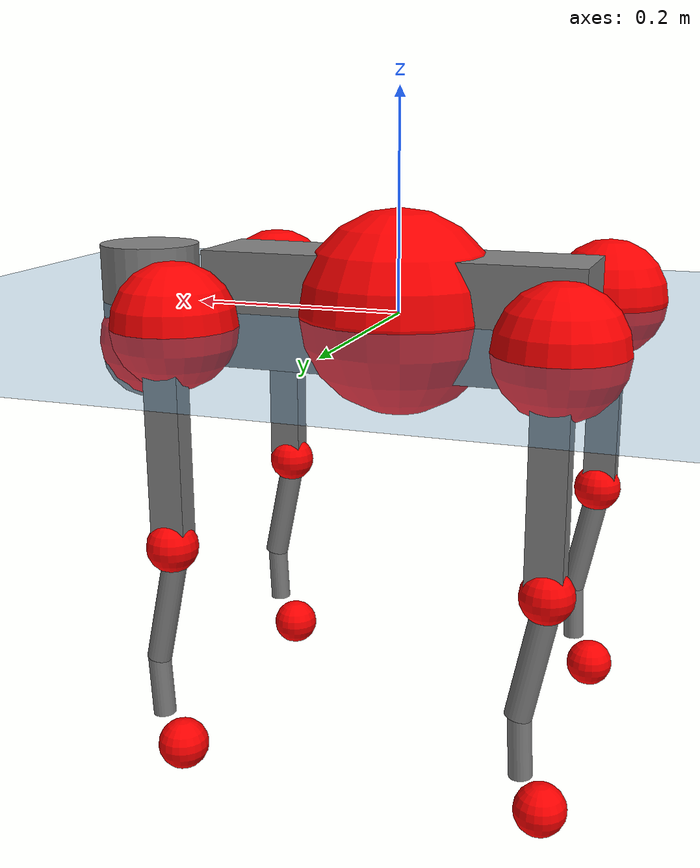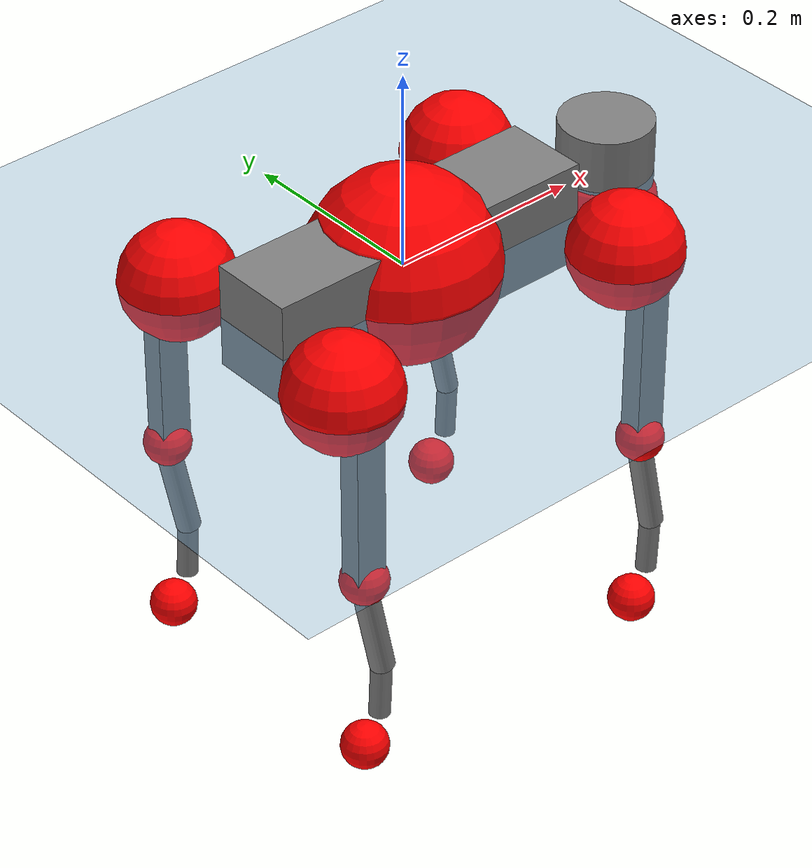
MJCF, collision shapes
<mujoco model="go2">
  <compiler angle="radian" assetdir="assets" balanceinertia="true" inertiafromgeom="false"/>

  <option timestep="0.005" density="1.2" viscosity="2e-05"/>

  <size nkey="1"/>

  <visual>
    <quality shadowsize="8192"/>
    <map shadowclip="0.5"/>
  </visual>

  <default>
    <default class="/">
      <geom contype="0" conaffinity="0" group="1" solref="-1000 -80"/>
      <site size="0.01 0.005 0.005" group="5"/>
      <general forcelimited="true" biastype="affine" gainprm="20" biasprm="0 -20 -0.5"/>
      <default class="go2">
        <joint armature="0.01" damping="0.01" frictionloss="0.2"/>
        <geom condim="1" margin="0.001"/>
        <default class="visual">
          <geom type="mesh" group="2"/>
        </default>
        <default class="collision">
          <geom group="3"/>
          <default class="foot">
            <geom size="0.022 0 0" condim="6" priority="1" friction="0.8 0.02 0.01" solimp="0.015 1 0.022"/>
          </default>
        </default>
        <default class="reward_collision_sphere">
          <geom group="5" rgba="1 0 0 1"/>
        </default>
      </default>
    </default>
  </default>

  <asset>
    <texture type="skybox" colorspace="auto" name="//unnamed_texture_0" builtin="gradient" rgb1="0.95 0.95 0.95" rgb2="0.95 0.95 0.95" width="100" height="600"/>
    <texture type="2d" colorspace="auto" name="texplane" builtin="checker" rgb1="0.345 0.575 0.748" rgb2="0.345 0.575 0.748" markrgb="1 1 1" width="512" height="512"/>
    <material name="MatPlane" class="/" texture="texplane" texuniform="true" texrepeat="2 2" specular="0.9"/>
    <material name="metal" class="/" rgba="0.9 0.95 0.95 1"/>
    <material name="black" class="/" rgba="0 0 0 1"/>
    <material name="white" class="/"/>
    <material name="gray" class="/" rgba="0.671705 0.692426 0.77427 1"/>
    <mesh name="base_0" class="/" file="base_0.obj"/>
    <mesh name="base_1" class="/" file="base_1.obj"/>
    <mesh name="base_2" class="/" file="base_2.obj"/>
    <mesh name="base_3" class="/" file="base_3.obj"/>
    <mesh name="base_4" class="/" file="base_4.obj"/>
    <mesh name="hip_0" class="/" file="hip_0.obj"/>
    <mesh name="hip_1" class="/" file="hip_1.obj"/>
    <mesh name="thigh_0" class="/" file="thigh_0.obj"/>
    <mesh name="thigh_1" class="/" file="thigh_1.obj"/>
    <mesh name="thigh_mirror_0" class="/" file="thigh_mirror_0.obj"/>
    <mesh name="thigh_mirror_1" class="/" file="thigh_mirror_1.obj"/>
    <mesh name="calf_0" class="/" file="calf_0.obj"/>
    <mesh name="calf_1" class="/" file="calf_1.obj"/>
    <mesh name="calf_mirror_0" class="/" file="calf_mirror_0.obj"/>
    <mesh name="calf_mirror_1" class="/" file="calf_mirror_1.obj"/>
    <mesh name="foot" class="/" file="foot.obj"/>
  </asset>

  <worldbody>
    <geom name="floor" class="/" size="100 100 0.125" type="plane" group="0" material="MatPlane"/>
    <light name="toplight_shadow" class="/" pos="0 0 5" dir="0.0990148 0.0990148 -0.990148" type="directional" ambient="0.04 0.04 0.04" diffuse="0.55 0.55 0.55" specular="0.12 0.12 0.12"/>
    <light name="toplight_fill" class="/" pos="0 0 5" dir="0.0990148 0.0990148 -0.990148" type="directional" castshadow="false" ambient="0.04 0.04 0.04" diffuse="0.3 0.3 0.3" specular="0.08 0.08 0.08"/>
    <body name="trunk" childclass="go2" pos="-0.000613141 5.08841e-05 0.00156693" quat="0.999999 0.000703614 -0.000880447 0.000123885">
      <inertial pos="0.0178267 -0.00250645 -0.00710925" quat="-0.000216369 0.712884 -0.00177331 0.701279" mass="5.79101" diaginertia="0.0589275 0.101134 0.0160849"/>
      <joint name="//unnamed_joint_0" type="free" armature="0" damping="0" frictionloss="0"/>
      <geom name="//unnamed_geom_1" class="visual" material="black" mesh="base_0"/>
      <geom name="//unnamed_geom_2" class="visual" material="black" mesh="base_1"/>
      <geom name="//unnamed_geom_3" class="visual" material="black" mesh="base_2"/>
      <geom name="//unnamed_geom_4" class="visual" material="white" mesh="base_3"/>
      <geom name="//unnamed_geom_5" class="visual" material="gray" mesh="base_4"/>
      <geom name="trunk_1" class="collision" size="0.176822 0.0439471 0.0535825" type="box"/>
      <geom name="trunk_2" class="collision" size="0.0470022 0.042302" pos="0.25333 0 0.00922352" type="cylinder"/>
      <geom name="trunk_3" class="collision" size="0.0441821" pos="0.260441 0 -0.0553411"/>
      <geom name="//unnamed_geom_9" class="reward_collision_sphere" size="0.0940044"/>
      <geom name="//unnamed_geom_10" class="reward_collision_sphere" size="0.0564026" pos="0.248886 0 -0.0415058"/>
      <site name="imu" pos="-0.0136443 -0.000909248 0.0298204" size="0.00940044"/>
      <camera name="track" pos="0 -2.0178 0" quat="0.707107 0.707107 0 0" mode="trackcom"/>
      <camera name="ego_camera" pos="0.27733 0 0.0415058" quat="-0.5 -0.5 0.5 0.5"/>
      <body name="FL_hip" pos="0.168611 0.0442325 -0.00274019" quat="1 -0.000198891 6.645e-05 0.00025623">
        <inertial pos="-0.00464476 -0.000588213 0.000720338" quat="0.498106 0.498868 0.504435 0.498566" mass="0.575678" diaginertia="0.000487563 0.000597118 0.000316528"/>
        <joint name="FL_hip_joint" pos="0 0 0" axis="0.999877 0.00935322 -0.0125749" range="-1.05122 1.08953" armature="0.00914035" damping="0.0205267" frictionloss="0.161429"/>
        <geom name="//unnamed_geom_11" class="visual" material="metal" mesh="hip_0"/>
        <geom name="//unnamed_geom_12" class="visual" material="gray" mesh="hip_1"/>
        <geom name="//unnamed_geom_13" class="collision" size="0.043242 0.0188009" pos="0 0.0807122 0" quat="0.707107 0.707107 0 0" type="cylinder"/>
        <geom name="//unnamed_geom_14" class="reward_collision_sphere" size="0.0564026" pos="0 0.0706232 0"/>
        <body name="FL_thigh" pos="-0.00341894 0.0973645 0.00282658" quat="1 0.000935399 0.000186602 0.000221359">
          <inertial pos="-0.00426736 -0.0224878 -0.0274593" quat="0.832365 0.0753309 -0.0285834 0.54834" mass="0.93532" diaginertia="0.00335811 0.00609628 0.000602616"/>
          <joint name="FL_thigh_joint" pos="0 0 0" axis="0.00334664 0.999976 0.00611857" stiffness="0.00834608" range="-1.5249 3.54763" armature="0.00910403" damping="0.0177741" frictionloss="0.162383"/>
          <geom name="//unnamed_geom_15" class="visual" material="metal" mesh="thigh_0"/>
          <geom name="//unnamed_geom_16" class="visual" material="gray" mesh="thigh_1"/>
          <geom name="//unnamed_geom_17" class="collision" size="0.100115 0.0115155 0.0159807" pos="0 0 -0.0982305" quat="0.707107 0 0.707107 0" type="box"/>
          <body name="FL_calf" pos="0.000143773 0.00161 -0.196823" quat="1 -8.92713e-06 9.16499e-06 -6.39114e-06">
            <inertial pos="0.00520324 -0.0004343 -0.132597" quat="0.710388 0.00124047 -0.00433363 0.703796" mass="0.202813" diaginertia="0.000805101 0.00151741 3.56503e-05"/>
            <joint name="FL_calf_joint" pos="0 0 0" axis="-0.0153637 0.999867 -0.00551066" range="-2.66638 -0.832107" armature="0.0100287" damping="0.000690843" frictionloss="0.19092"/>
            <geom name="//unnamed_geom_18" class="visual" material="gray" mesh="calf_0"/>
            <geom name="//unnamed_geom_19" class="visual" material="black" mesh="calf_1"/>
            <geom name="FL_calf0" class="collision" size="0.0112805 0.0564026" pos="0.00711102 0 -0.0553411" quat="0.994493 0 -0.104807 0" type="cylinder"/>
            <geom name="//unnamed_geom_21" class="collision" size="0.0103405 0.0305514" pos="0.0177776 0 -0.136508" quat="0.999688 0 0.0249974 0" type="cylinder"/>
            <geom name="//unnamed_geom_22" class="visual" pos="0 0 -0.196461" quat="1 0 0 0" material="black" mesh="foot"/>
            <geom name="FL_foot" class="foot" size="0.0157458" pos="-0.00177776 0 -0.196461"/>
            <geom name="//unnamed_geom_24" class="reward_collision_sphere" size="0.0235011"/>
            <geom name="//unnamed_geom_25" class="reward_collision_sphere" size="0.0235011" pos="-0.00177776 0 -0.196461"/>
            <site name="FL_foot" class="foot" pos="-0.00177776 0 -0.196461" size="0.00940044"/>
          </body>
        </body>
      </body>
      <body name="FR_hip" pos="0.170416 -0.044929 -0.00120818" quat="1 -4.81346e-06 -2.11186e-05 -7.78138e-06">
        <inertial pos="-0.00743301 -0.00241321 -0.00325773" quat="0.502098 0.50429 0.500911 0.492623" mass="0.56675" diaginertia="0.000471354 0.000633634 0.000307408"/>
        <joint name="FR_hip_joint" pos="0 0 0" axis="0.99992 0.0126499 -0.000905574" stiffness="0.00634749" range="-1.0586 1.03546" armature="0.00969" damping="0" frictionloss="0.204542"/>
        <geom name="//unnamed_geom_26" class="visual" pos="0 7.53993e-10 3.23403e-08" quat="4.63268e-05 1 0 0" material="metal" mesh="hip_0"/>
        <geom name="//unnamed_geom_27" class="visual" pos="0 1.22231e-09 -7.999e-08" quat="4.63268e-05 1 0 0" material="gray" mesh="hip_1"/>
        <geom name="//unnamed_geom_28" class="collision" size="0.043242 0.0188009" pos="0 -0.0807122 0" quat="0.707107 0.707107 0 0" type="cylinder"/>
        <geom name="//unnamed_geom_29" class="reward_collision_sphere" size="0.0564026" pos="0 -0.0706232 0"/>
        <body name="FR_thigh" pos="0.00289473 -0.0990579 -0.0015959" quat="0.999999 0.000599421 -0.000824966 -0.000421455">
          <inertial pos="-0.00177321 0.0214298 -0.0328399" quat="0.540737 -0.0245708 0.0876194 0.836255" mass="0.991806" diaginertia="0.00319438 0.00593393 0.00060153"/>
          <joint name="FR_thigh_joint" pos="0 0 0" axis="0.000642909 -0.999998 -0.00201893" range="-3.4607 1.569" armature="0.0081924" damping="0.0193472" frictionloss="0.208054"/>
          <geom name="//unnamed_geom_30" class="visual" material="metal" mesh="thigh_mirror_0"/>
          <geom name="//unnamed_geom_31" class="visual" material="gray" mesh="thigh_mirror_1"/>
          <geom name="//unnamed_geom_32" class="collision" size="0.100115 0.0115155 0.0159807" pos="0 0 -0.0982305" quat="0.707107 0 0.707107 0" type="box"/>
          <body name="FR_calf" pos="-0.00283702 -0.00146305 -0.197444" quat="0.999999 -0.000118414 -0.00103337 0.000930744">
            <inertial pos="0.00281011 0.00072381 -0.131041" quat="0.706984 -0.000200234 1.6149e-05 0.70723" mass="0.214339" diaginertia="0.000876381 0.00153513 3.68758e-05"/>
            <joint name="FR_calf_joint" pos="0 0 0" axis="0.00349521 -0.999959 0.0083442" range="0.803742 2.66478" armature="0.0107643" damping="0.0159752" frictionloss="0.20961"/>
            <geom name="//unnamed_geom_33" class="visual" material="gray" mesh="calf_mirror_0"/>
            <geom name="//unnamed_geom_34" class="visual" material="black" mesh="calf_mirror_1"/>
            <geom name="FR_calf0" class="collision" size="0.0122206 0.0564026" pos="0.00888878 0 -0.0553411" quat="0.995004 0 -0.0998334 0" type="cylinder"/>
            <geom name="//unnamed_geom_36" class="collision" size="0.0103405 0.0305514" pos="0.0177776 0 -0.136508" quat="0.999688 0 0.0249974 0" type="cylinder"/>
            <geom name="//unnamed_geom_37" class="visual" pos="0 0 -0.196461" quat="1 0 0 0" material="black" mesh="foot"/>
            <geom name="FR_foot" class="foot" size="0.020078" pos="-0.00177776 0 -0.196461"/>
            <geom name="//unnamed_geom_39" class="reward_collision_sphere" size="0.0235011"/>
            <geom name="//unnamed_geom_40" class="reward_collision_sphere" size="0.0235011" pos="-0.00177776 0 -0.196461"/>
            <site name="FR_foot" class="foot" pos="-0.00177776 0 -0.196461" size="0.00940044"/>
          </body>
        </body>
      </body>
      <body name="RL_hip" pos="-0.169611 0.0444654 -0.00211383" quat="1 0.000262913 -0.000213613 0.000152347">
        <inertial pos="0.00501899 0.00514379 -0.000125914" quat="0.501965 0.509499 0.494111 0.494262" mass="0.573306" diaginertia="0.0005043 0.000634556 0.00031611"/>
        <joint name="RL_hip_joint" pos="0 0 0" axis="-0.999998 -0.000198605 0.00187865" range="-1.05593 1.07289" armature="0.0100074" damping="0.00217854" frictionloss="0.186295"/>
        <geom name="//unnamed_geom_41" class="visual" pos="2.91613e-10 0 5.7163e-08" quat="4.63268e-05 0 1 0" material="metal" mesh="hip_0"/>
        <geom name="//unnamed_geom_42" class="visual" pos="4.7274e-10 0 5.06954e-08" quat="4.63268e-05 0 1 0" material="gray" mesh="hip_1"/>
        <geom name="//unnamed_geom_43" class="collision" size="0.043242 0.0188009" pos="0 0.0807122 0" quat="0.707107 0.707107 0 0" type="cylinder"/>
        <geom name="//unnamed_geom_44" class="reward_collision_sphere" size="0.0564026" pos="0 0.0706232 0"/>
        <body name="RL_thigh" pos="0.000272328 0.0942083 0.0016914" quat="1 0.000478279 0.000692715 -0.000362567">
          <inertial pos="-0.00404344 -0.0205855 -0.0316992" quat="0.829183 0.0834194 -0.0216433 0.552294" mass="0.899832" diaginertia="0.00314131 0.00609862 0.000578363"/>
          <joint name="RL_thigh_joint" pos="0 0 0" axis="-0.000173115 0.999999 0.00128285" stiffness="0.00823266" range="-0.572118 4.48157" armature="0.00934504" damping="0" frictionloss="0.190819"/>
          <geom name="//unnamed_geom_45" class="visual" material="metal" mesh="thigh_0"/>
          <geom name="//unnamed_geom_46" class="visual" material="gray" mesh="thigh_1"/>
          <geom name="//unnamed_geom_47" class="collision" size="0.100115 0.0115155 0.0159807" pos="0 0 -0.0982305" quat="0.707107 0 0.707107 0" type="box"/>
          <body name="RL_calf" pos="-0.00195705 0.00124059 -0.198366" quat="1 -7.19576e-06 -8.91531e-07 -1.65659e-05">
            <inertial pos="0.00802728 0.00158579 -0.13188" quat="0.711481 0.013142 0.0034389 0.702575" mass="0.203018" diaginertia="0.000804353 0.00158765 3.62983e-05"/>
            <joint name="RL_calf_joint" pos="0 0 0" axis="-0.000417539 0.999999 0.000991574" stiffness="0.0106796" range="-2.67588 -0.892087" armature="0.0102714" damping="0.0157326" frictionloss="0.164521"/>
            <geom name="//unnamed_geom_48" class="visual" material="gray" mesh="calf_0"/>
            <geom name="//unnamed_geom_49" class="visual" material="black" mesh="calf_1"/>
            <geom name="RL_calf0" class="collision" size="0.0122206 0.0564026" pos="0.00888878 0 -0.0553411" quat="0.995004 0 -0.0998334 0" type="cylinder"/>
            <geom name="//unnamed_geom_51" class="collision" size="0.0103405 0.0305514" pos="0.0177776 0 -0.136508" quat="0.999688 0 0.0249974 0" type="cylinder"/>
            <geom name="//unnamed_geom_52" class="visual" pos="0 0 -0.196461" quat="1 0 0 0" material="black" mesh="foot"/>
            <geom name="RL_foot" class="foot" size="0.0190081" pos="-0.00177776 0 -0.196461"/>
            <geom name="//unnamed_geom_54" class="reward_collision_sphere" size="0.0235011"/>
            <geom name="//unnamed_geom_55" class="reward_collision_sphere" size="0.0235011" pos="-0.00177776 0 -0.196461"/>
            <site name="RL_foot" class="foot" pos="-0.00177776 0 -0.196461" size="0.00940044"/>
          </body>
        </body>
      </body>
      <body name="RR_hip" pos="-0.171111 -0.0481198 0.0028985" quat="1 -0.000232485 1.70816e-05 0.000102881">
        <inertial pos="0.00201925 0.000800991 -0.00176215" quat="0.500967 0.495387 0.499292 0.504313" mass="0.573768" diaginertia="0.000483957 0.000617703 0.000317624"/>
        <joint name="RR_hip_joint" pos="0 0 0" axis="-0.999953 0.00373086 0.00891087" range="-1.08977 1.09874" armature="0.00844896" damping="0" frictionloss="0.18848"/>
        <geom name="//unnamed_geom_56" class="visual" pos="-2.87458e-10 7.53993e-10 2.48227e-08" quat="2.14617e-09 4.63268e-05 4.63268e-05 -1" material="metal" mesh="hip_0"/>
        <geom name="//unnamed_geom_57" class="visual" pos="-4.83018e-10 1.22231e-09 1.30685e-07" quat="2.14617e-09 4.63268e-05 4.63268e-05 -1" material="gray" mesh="hip_1"/>
        <geom name="//unnamed_geom_58" class="collision" size="0.043242 0.0188009" pos="0 -0.0807122 0" quat="0.707107 0.707107 0 0" type="cylinder"/>
        <geom name="//unnamed_geom_59" class="reward_collision_sphere" size="0.0564026" pos="0 -0.0706232 0"/>
        <body name="RR_thigh" pos="0.00141124 -0.09471 -0.000987206" quat="0.999999 0.000207218 -0.000586121 0.000826074">
          <inertial pos="-0.00308898 0.0253196 -0.0297492" quat="0.551708 -0.020148 0.0847411 0.829477" mass="0.891451" diaginertia="0.00307609 0.00596746 0.000572072"/>
          <joint name="RR_thigh_joint" pos="0 0 0" axis="-0.00268088 -0.999985 0.00479485" range="-4.482 0.501847" armature="0.00957543" damping="0.0232591" frictionloss="0.183436"/>
          <geom name="//unnamed_geom_60" class="visual" material="metal" mesh="thigh_mirror_0"/>
          <geom name="//unnamed_geom_61" class="visual" material="gray" mesh="thigh_mirror_1"/>
          <geom name="//unnamed_geom_62" class="collision" size="0.100115 0.0115155 0.0159807" pos="0 0 -0.0982305" quat="0.707107 0 0.707107 0" type="box"/>
          <body name="RR_calf" pos="0.00191865 0.00162381 -0.197304" quat="1 -0.000476096 -0.00057294 -0.000393797">
            <inertial pos="0.00800876 -0.00156572 -0.129911" quat="0.710436 -0.0127322 0.00583101 0.703623" mass="0.20105" diaginertia="0.000802122 0.00152941 3.43761e-05"/>
            <joint name="RR_calf_joint" pos="0 0 0" axis="-0.000648784 -0.999915 0.0130518" range="0.841635 2.76503" armature="0.00913715" damping="0.0162938" frictionloss="0.208935"/>
            <geom name="//unnamed_geom_63" class="visual" material="gray" mesh="calf_mirror_0"/>
            <geom name="//unnamed_geom_64" class="visual" material="black" mesh="calf_mirror_1"/>
            <geom name="RR_calf0" class="collision" size="0.0122206 0.0564026" pos="0.00888878 0 -0.0553411" quat="0.995004 0 -0.0998334 0" type="cylinder"/>
            <geom name="//unnamed_geom_66" class="collision" size="0.0103405 0.0305514" pos="0.0177776 0 -0.136508" quat="0.999688 0 0.0249974 0" type="cylinder"/>
            <geom name="//unnamed_geom_67" class="visual" pos="0 0 -0.196461" quat="1 0 0 0" material="black" mesh="foot"/>
            <geom name="RR_foot" class="foot" size="0.0189146" pos="-0.00177776 0 -0.196461"/>
            <geom name="//unnamed_geom_69" class="reward_collision_sphere" size="0.0235011"/>
            <geom name="//unnamed_geom_70" class="reward_collision_sphere" size="0.0235011" pos="-0.00177776 0 -0.196461"/>
            <site name="RR_foot" class="foot" pos="-0.00177776 0 -0.196461" size="0.00940044"/>
          </body>
        </body>
      </body>
    </body>
  </worldbody>

  <contact>
    <pair class="/" geom1="floor" geom2="FL_foot" name="//unnamed_contact_0"/>
    <pair class="/" geom1="floor" geom2="FR_foot" name="//unnamed_contact_1"/>
    <pair class="/" geom1="floor" geom2="RL_foot" name="//unnamed_contact_2"/>
    <pair class="/" geom1="floor" geom2="RR_foot" name="//unnamed_contact_3"/>
  </contact>

  <actuator>
    <general name="FL_hip" class="/" joint="FL_hip_joint" forcerange="-19.9938 19.9938" gainprm="17.6268" biasprm="0 -17.6268 -0.43864"/>
    <general name="FL_thigh" class="/" joint="FL_thigh_joint" forcerange="-20.9849 20.9849" gainprm="17.6268" biasprm="0 -17.6268 -0.43864"/>
    <general name="FL_calf" class="/" joint="FL_calf_joint" forcerange="-40.0266 40.0266" gainprm="17.6268" biasprm="0 -17.6268 -0.43864"/>
    <general name="FR_hip" class="/" joint="FR_hip_joint" forcerange="-22.0922 22.0922" gainprm="17.6268" biasprm="0 -17.6268 -0.43864"/>
    <general name="FR_thigh" class="/" joint="FR_thigh_joint" forcerange="-24.6046 24.6046" gainprm="17.6268" biasprm="0 -17.6268 -0.43864"/>
    <general name="FR_calf" class="/" joint="FR_calf_joint" forcerange="-42.7648 42.7648" gainprm="17.6268" biasprm="0 -17.6268 -0.43864"/>
    <general name="RL_hip" class="/" joint="RL_hip_joint" forcerange="-21.8732 21.8732" gainprm="17.6268" biasprm="0 -17.6268 -0.43864"/>
    <general name="RL_thigh" class="/" joint="RL_thigh_joint" forcerange="-19.9907 19.9907" gainprm="17.6268" biasprm="0 -17.6268 -0.43864"/>
    <general name="RL_calf" class="/" joint="RL_calf_joint" forcerange="-45.4817 45.4817" gainprm="17.6268" biasprm="0 -17.6268 -0.43864"/>
    <general name="RR_hip" class="/" joint="RR_hip_joint" forcerange="-22.9441 22.9441" gainprm="17.6268" biasprm="0 -17.6268 -0.43864"/>
    <general name="RR_thigh" class="/" joint="RR_thigh_joint" forcerange="-24.2277 24.2277" gainprm="17.6268" biasprm="0 -17.6268 -0.43864"/>
    <general name="RR_calf" class="/" joint="RR_calf_joint" forcerange="-43.6963 43.6963" gainprm="17.6268" biasprm="0 -17.6268 -0.43864"/>
  </actuator>

  <sensor>
    <gyro site="imu" name="imu_angular_velocity"/>
    <velocimeter site="imu" name="imu_linear_velocity"/>
    <framelinvel objtype="site" objname="FL_foot" name="FL_foot_global_linear_velocity"/>
    <framelinvel objtype="site" objname="FR_foot" name="FR_foot_global_linear_velocity"/>
    <framelinvel objtype="site" objname="RL_foot" name="RL_foot_global_linear_velocity"/>
    <framelinvel objtype="site" objname="RR_foot" name="RR_foot_global_linear_velocity"/>
  </sensor>

  <keyframe>
    <key name="home" qpos="0 0 0.325 1 0 0 0 0.1 0.8 -1.5 -0.1 -0.8 1.5 -0.1 0.8 -1.5 0.1 -0.8 1.5"/>
  </keyframe>
</mujoco>
